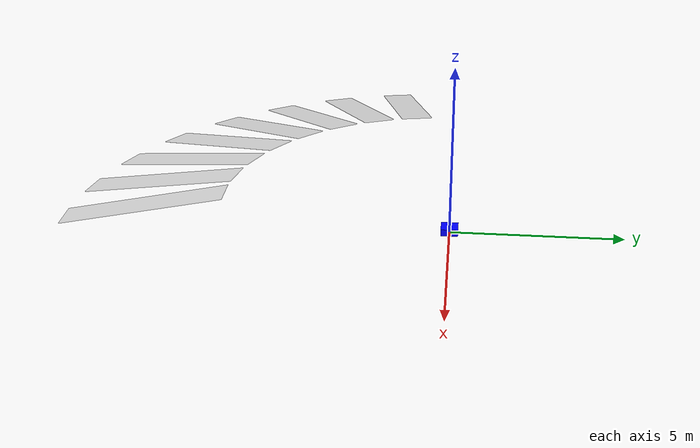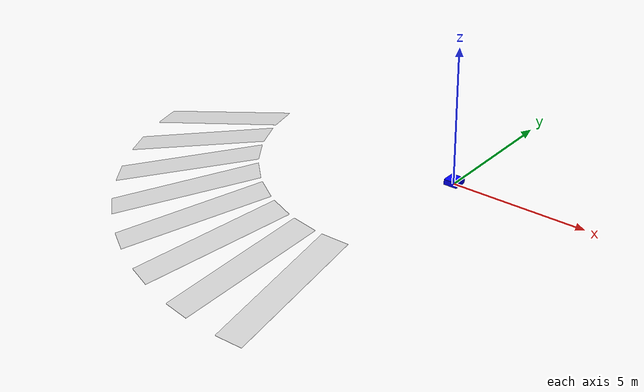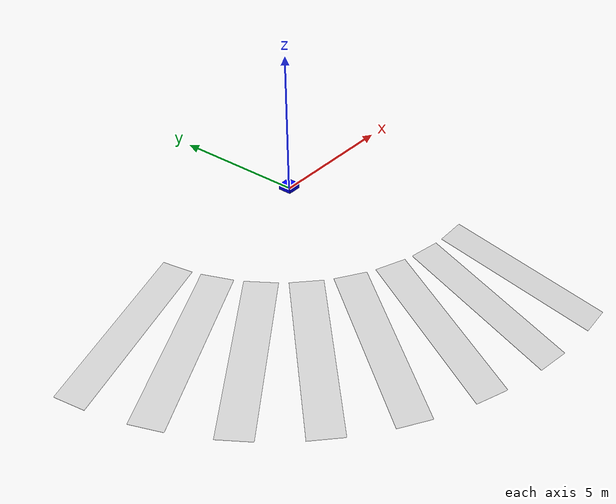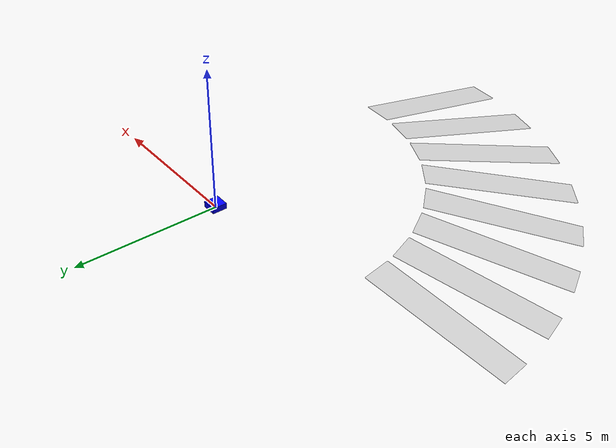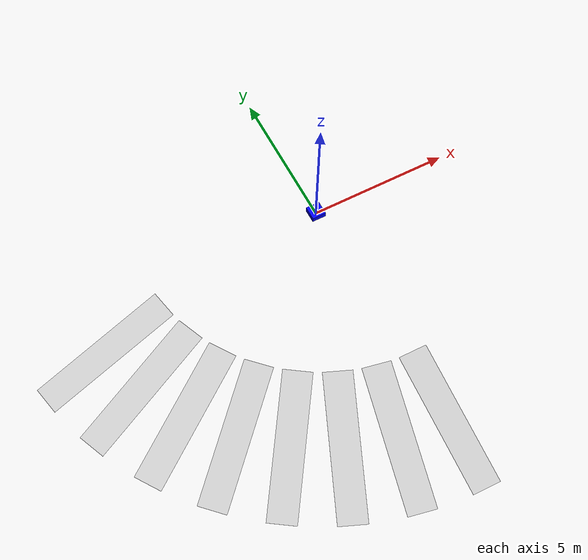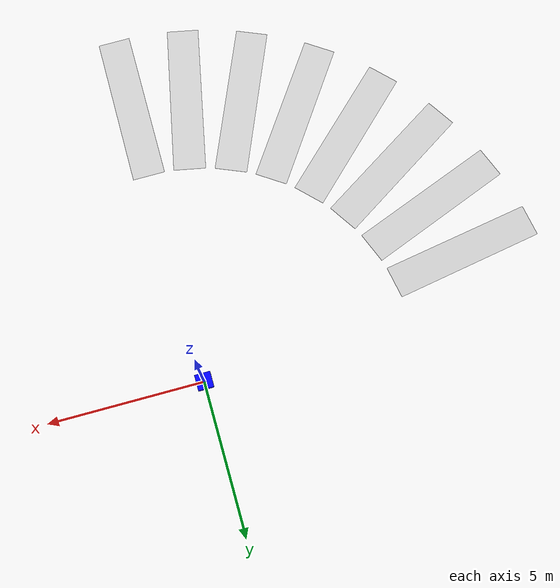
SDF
<sdf version="1.7">
 <world name="friction_pyramid">
  <model name="groundplane">
   <static>1</static>
   <link name="link">
    <collision name="collision">
     <geometry><plane><normal>0 0 1</normal><size>1 1</size></plane></geometry>
    </collision>
   </link>
  </model>
  <model name="boxes_box_0">
   <pose relative_to="boxes_ramp_0">0 0 0.1 0 0 0</pose>
   <link name="link_1">
    <inertial>
     <mass>1</mass>
     <inertia>
      <ixx>0.02416666666666667</ixx>
      <ixy>0</ixy>
      <ixz>0</ixz>
      <iyy>0.02416666666666667</iyy>
      <iyz>0</iyz>
      <izz>0.041666666666666664</izz>
     </inertia>
    </inertial>
    <collision name="collision">
     <geometry><box><size>0.5 0.5 0.2</size></box></geometry>
     <surface><friction><ode><mu>0.05</mu><mu2>0.05</mu2></ode></friction></surface>
    </collision>
    <visual name="visual">
     <geometry><box><size>0.5 0.5 0.2</size></box></geometry>
     <material><ambient>0 0 1 1</ambient><diffuse>0 0 1 1</diffuse><specular>0.1 0.1 0.1 1</specular></material>
    </visual>
   </link>
  </model>
  <model name="boxes_box_1">
   <pose relative_to="boxes_ramp_1">0 0 0.1 0 0 0</pose>
   <link name="link_1">
    <inertial>
     <mass>1</mass>
     <inertia>
      <ixx>0.02416666666666667</ixx>
      <ixy>0</ixy>
      <ixz>0</ixz>
      <iyy>0.02416666666666667</iyy>
      <iyz>0</iyz>
      <izz>0.041666666666666664</izz>
     </inertia>
    </inertial>
    <collision name="collision">
     <geometry><box><size>0.5 0.5 0.2</size></box></geometry>
     <surface><friction><ode><mu>0.05</mu><mu2>0.05</mu2></ode></friction></surface>
    </collision>
    <visual name="visual">
     <geometry><box><size>0.5 0.5 0.2</size></box></geometry>
     <material><ambient>0 0 1 1</ambient><diffuse>0 0 1 1</diffuse><specular>0.1 0.1 0.1 1</specular></material>
    </visual>
   </link>
  </model>
  <model name="boxes_box_2">
   <pose relative_to="boxes_ramp_2">0 0 0.1 0 0 0</pose>
   <link name="link_1">
    <inertial>
     <mass>1</mass>
     <inertia>
      <ixx>0.02416666666666667</ixx>
      <ixy>0</ixy>
      <ixz>0</ixz>
      <iyy>0.02416666666666667</iyy>
      <iyz>0</iyz>
      <izz>0.041666666666666664</izz>
     </inertia>
    </inertial>
    <collision name="collision">
     <geometry><box><size>0.5 0.5 0.2</size></box></geometry>
     <surface><friction><ode><mu>0.05</mu><mu2>0.05</mu2></ode></friction></surface>
    </collision>
    <visual name="visual">
     <geometry><box><size>0.5 0.5 0.2</size></box></geometry>
     <material><ambient>0 0 1 1</ambient><diffuse>0 0 1 1</diffuse><specular>0.1 0.1 0.1 1</specular></material>
    </visual>
   </link>
  </model>
  <model name="boxes_box_3">
   <pose relative_to="boxes_ramp_3">0 0 0.1 0 0 0</pose>
   <link name="link_1">
    <inertial>
     <mass>1</mass>
     <inertia>
      <ixx>0.02416666666666667</ixx>
      <ixy>0</ixy>
      <ixz>0</ixz>
      <iyy>0.02416666666666667</iyy>
      <iyz>0</iyz>
      <izz>0.041666666666666664</izz>
     </inertia>
    </inertial>
    <collision name="collision">
     <geometry><box><size>0.5 0.5 0.2</size></box></geometry>
     <surface><friction><ode><mu>0.05</mu><mu2>0.05</mu2></ode></friction></surface>
    </collision>
    <visual name="visual">
     <geometry><box><size>0.5 0.5 0.2</size></box></geometry>
     <material><ambient>0 0 1 1</ambient><diffuse>0 0 1 1</diffuse><specular>0.1 0.1 0.1 1</specular></material>
    </visual>
   </link>
  </model>
  <model name="boxes_box_4">
   <pose relative_to="boxes_ramp_4">0 0 0.1 0 0 0</pose>
   <link name="link_1">
    <inertial>
     <mass>1</mass>
     <inertia>
      <ixx>0.02416666666666667</ixx>
      <ixy>0</ixy>
      <ixz>0</ixz>
      <iyy>0.02416666666666667</iyy>
      <iyz>0</iyz>
      <izz>0.041666666666666664</izz>
     </inertia>
    </inertial>
    <collision name="collision">
     <geometry><box><size>0.5 0.5 0.2</size></box></geometry>
     <surface><friction><ode><mu>0.05</mu><mu2>0.05</mu2></ode></friction></surface>
    </collision>
    <visual name="visual">
     <geometry><box><size>0.5 0.5 0.2</size></box></geometry>
     <material><ambient>0 0 1 1</ambient><diffuse>0 0 1 1</diffuse><specular>0.1 0.1 0.1 1</specular></material>
    </visual>
   </link>
  </model>
  <model name="boxes_ramp_17">
   <pose relative_to="groundplane">-8.827067523629074 -1.7558128981451553 0.5 0 0.2 3.3379421944391554</pose>
   <static>1</static>
   <link name="link">
    <collision name="collision">
     <pose relative_to="link">0 0 0 0 0 0</pose>
     <geometry><box><size>5 1 0.02</size></box></geometry>
     <surface>
      <contact><ode><kp>1e+06</kp><kd>1</kd></ode></contact>
      <friction><ode><mu>1</mu><mu2>1</mu2></ode></friction>
     </surface>
    </collision>
    <visual name="visual">
     <geometry><box><size>5 1 0.02</size></box></geometry>
     <material>
      <ambient>.3 .3 .3  0.5</ambient>
      <diffuse>.7 .7 .7  0.5</diffuse>
      <specular>0.01 0.01 0.01 1.000000</specular>
     </material>
    </visual>
    <gravity>0</gravity>
   </link>
  </model>
  <model name="boxes_ramp_18">
   <pose relative_to="groundplane">-8.314915792601582 -3.444150891285807 0.5 0 0.2 3.5342917352885173</pose>
   <static>1</static>
   <link name="link">
    <collision name="collision">
     <pose relative_to="link">0 0 0 0 0 0</pose>
     <geometry><box><size>5 1 0.02</size></box></geometry>
     <surface>
      <contact><ode><kp>1e+06</kp><kd>1</kd></ode></contact>
      <friction><ode><mu>1</mu><mu2>1</mu2></ode></friction>
     </surface>
    </collision>
    <visual name="visual">
     <geometry><box><size>5 1 0.02</size></box></geometry>
     <material>
      <ambient>.3 .3 .3  0.5</ambient>
      <diffuse>.7 .7 .7  0.5</diffuse>
      <specular>0.01 0.01 0.01 1.000000</specular>
     </material>
    </visual>
    <gravity>0</gravity>
   </link>
  </model>
  <model name="boxes_ramp_19">
   <pose relative_to="groundplane">-7.4832265107229095 -5.000132097176418 0.5 0 0.2 3.730641276137879</pose>
   <static>1</static>
   <link name="link">
    <collision name="collision">
     <pose relative_to="link">0 0 0 0 0 0</pose>
     <geometry><box><size>5 1 0.02</size></box></geometry>
     <surface>
      <contact><ode><kp>1e+06</kp><kd>1</kd></ode></contact>
      <friction><ode><mu>1</mu><mu2>1</mu2></ode></friction>
     </surface>
    </collision>
    <visual name="visual">
     <geometry><box><size>5 1 0.02</size></box></geometry>
     <material>
      <ambient>.3 .3 .3  0.5</ambient>
      <diffuse>.7 .7 .7  0.5</diffuse>
      <specular>0.01 0.01 0.01 1.000000</specular>
     </material>
    </visual>
    <gravity>0</gravity>
   </link>
  </model>
  <model name="boxes_ramp_20">
   <pose relative_to="groundplane">-6.363961030678929 -6.363961030678928 0.5 0 0.2 3.9269908169872414</pose>
   <static>1</static>
   <link name="link">
    <collision name="collision">
     <pose relative_to="link">0 0 0 0 0 0</pose>
     <geometry><box><size>5 1 0.02</size></box></geometry>
     <surface>
      <contact><ode><kp>1e+06</kp><kd>1</kd></ode></contact>
      <friction><ode><mu>1</mu><mu2>1</mu2></ode></friction>
     </surface>
    </collision>
    <visual name="visual">
     <geometry><box><size>5 1 0.02</size></box></geometry>
     <material>
      <ambient>.3 .3 .3  0.5</ambient>
      <diffuse>.7 .7 .7  0.5</diffuse>
      <specular>0.01 0.01 0.01 1.000000</specular>
     </material>
    </visual>
    <gravity>0</gravity>
   </link>
  </model>
  <model name="boxes_ramp_21">
   <pose relative_to="groundplane">-5.00013209717642 -7.483226510722907 0.5 0 0.2 4.123340357836604</pose>
   <static>1</static>
   <link name="link">
    <collision name="collision">
     <pose relative_to="link">0 0 0 0 0 0</pose>
     <geometry><box><size>5 1 0.02</size></box></geometry>
     <surface>
      <contact><ode><kp>1e+06</kp><kd>1</kd></ode></contact>
      <friction><ode><mu>1</mu><mu2>1</mu2></ode></friction>
     </surface>
    </collision>
    <visual name="visual">
     <geometry><box><size>5 1 0.02</size></box></geometry>
     <material>
      <ambient>.3 .3 .3  0.5</ambient>
      <diffuse>.7 .7 .7  0.5</diffuse>
      <specular>0.01 0.01 0.01 1.000000</specular>
     </material>
    </visual>
    <gravity>0</gravity>
   </link>
  </model>
  <model name="boxes_ramp_22">
   <pose relative_to="groundplane">-3.444150891285813 -8.314915792601578 0.5 0 0.2 4.319689898685965</pose>
   <static>1</static>
   <link name="link">
    <collision name="collision">
     <pose relative_to="link">0 0 0 0 0 0</pose>
     <geometry><box><size>5 1 0.02</size></box></geometry>
     <surface>
      <contact><ode><kp>1e+06</kp><kd>1</kd></ode></contact>
      <friction><ode><mu>1</mu><mu2>1</mu2></ode></friction>
     </surface>
    </collision>
    <visual name="visual">
     <geometry><box><size>5 1 0.02</size></box></geometry>
     <material>
      <ambient>.3 .3 .3  0.5</ambient>
      <diffuse>.7 .7 .7  0.5</diffuse>
      <specular>0.01 0.01 0.01 1.000000</specular>
     </material>
    </visual>
    <gravity>0</gravity>
   </link>
  </model>
  <model name="boxes_ramp_23">
   <pose relative_to="groundplane">-1.755812898145158 -8.827067523629072 0.5 0 0.2 4.516039439535327</pose>
   <static>1</static>
   <link name="link">
    <collision name="collision">
     <pose relative_to="link">0 0 0 0 0 0</pose>
     <geometry><box><size>5 1 0.02</size></box></geometry>
     <surface>
      <contact><ode><kp>1e+06</kp><kd>1</kd></ode></contact>
      <friction><ode><mu>1</mu><mu2>1</mu2></ode></friction>
     </surface>
    </collision>
    <visual name="visual">
     <geometry><box><size>5 1 0.02</size></box></geometry>
     <material>
      <ambient>.3 .3 .3  0.5</ambient>
      <diffuse>.7 .7 .7  0.5</diffuse>
      <specular>0.01 0.01 0.01 1.000000</specular>
     </material>
    </visual>
    <gravity>0</gravity>
   </link>
  </model>
  <model name="boxes_ramp_24">
   <pose relative_to="groundplane">-1.6532731788489267e-15 -9.0 0.5 0 0.2 4.71238898038469</pose>
   <static>1</static>
   <link name="link">
    <collision name="collision">
     <pose relative_to="link">0 0 0 0 0 0</pose>
     <geometry><box><size>5 1 0.02</size></box></geometry>
     <surface>
      <contact><ode><kp>1e+06</kp><kd>1</kd></ode></contact>
      <friction><ode><mu>1</mu><mu2>1</mu2></ode></friction>
     </surface>
    </collision>
    <visual name="visual">
     <geometry><box><size>5 1 0.02</size></box></geometry>
     <material>
      <ambient>.3 .3 .3  0.5</ambient>
      <diffuse>.7 .7 .7  0.5</diffuse>
      <specular>0.01 0.01 0.01 1.000000</specular>
     </material>
    </visual>
    <gravity>0</gravity>
   </link>
  </model>
 </world>
</sdf>
